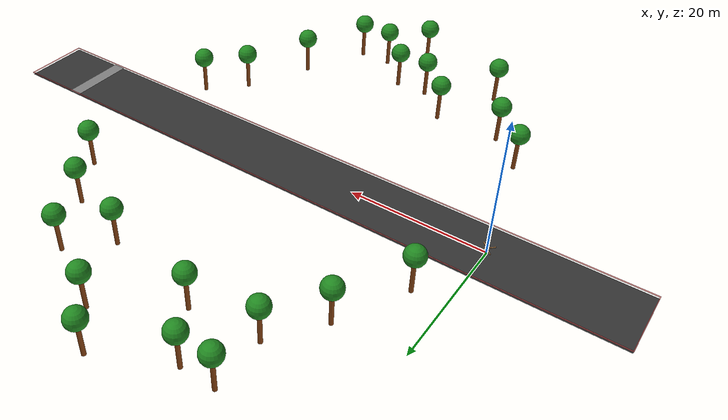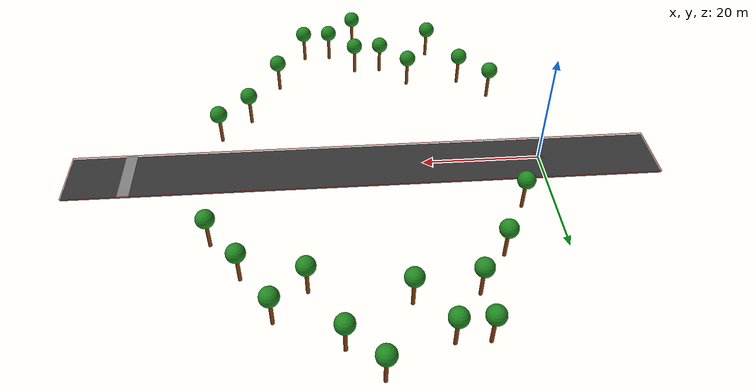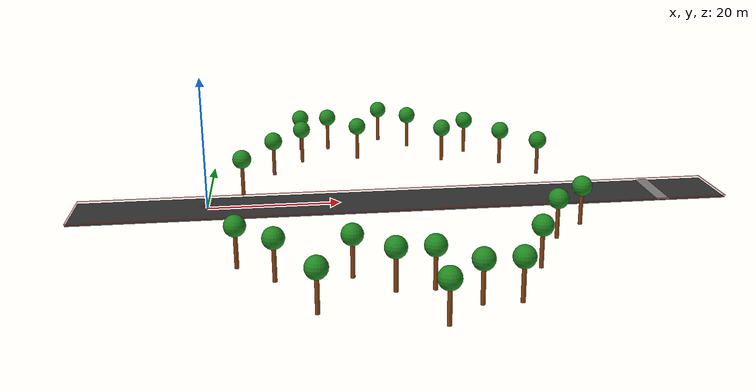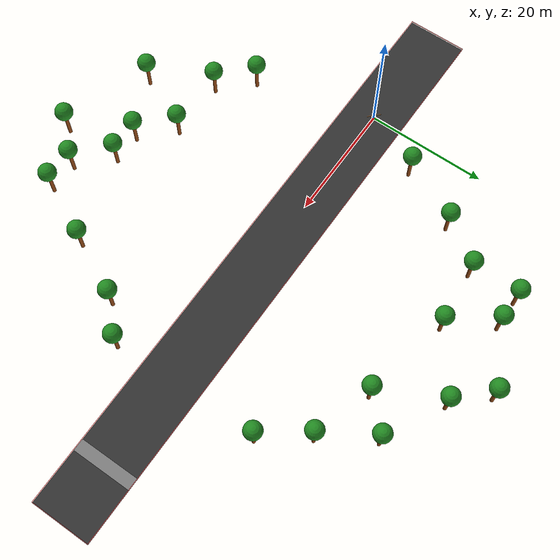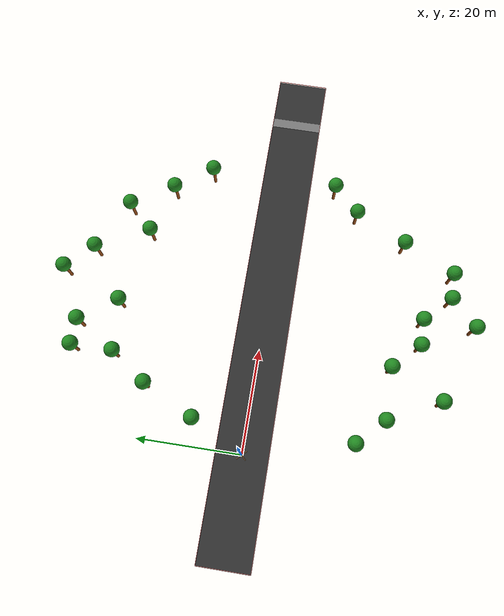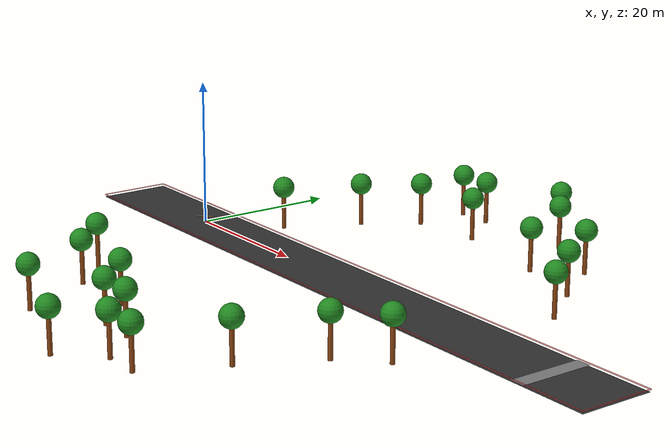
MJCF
<mujoco model="sprint_quadruped">
  <option timestep="0.004" iterations="1" ls_iterations="5" solver="Newton">
    <flag eulerdamp="disable"/>
  </option>

  <statistic center="0 0 0.1" extent="10.0" meansize="0.04"/>

  <visual>
    <rgba force="1 0 0 1" haze = "0.71 0.71 0.71 0.51" fog="0.71 0.71 0.71 1"/>
    <global azimuth="140" elevation="-20" offwidth="1280" offheight="720"/>
  </visual>

  <asset>
    <texture type="skybox" builtin="gradient" rgb1="0.71 0.71 0.71" rgb2="0.71 0.71 0.71" width="800" height="800"/>
    <texture name="grass" type="2d" builtin="checker" width="512" height="512" rgb1="0.133 0.745 0.133" rgb2="0.486 0.988 0.0"/>
    <texture name="trunk" type="cube" builtin="flat" width="128" height="128" rgb1="0.545 0.271 0.075" rgb2="0.545 0.271 0.075"/>
    <texture name="foliage" type="cube" builtin="flat" width="128" height="128" rgb1="0.133 0.545 0.133" rgb2="0.133 0.545 0.133"/>
    <texture name="black_white_checkers" type="2d" builtin="checker" width="512" height="512" rgb1="0 0 0" rgb2="1 1 1"/>
    <texture name="orange_brown_checkers" type="2d" builtin="checker" width="512" height="512" rgb1="0.988 0.729 0.012" rgb2="0.918 0.714 0.463"/>

    <material name="body" rgba=".7 .5 .3 1" specular="0.9" shininess="0.8"/>
    <material name="grass" texture="grass" texrepeat="1 1" texuniform="true" reflectance="0.2"/>
    <material name="trunk" texture="trunk" texuniform="true"/>
    <material name="track" texture="orange_brown_checkers" texrepeat="1 1" texuniform="true" reflectance="0.2"/>
    <material name="foliage" texture="foliage" texuniform="true"/>
    <material name="finish_line" texture="black_white_checkers" texrepeat="2 10"/>
  </asset>

  <default>
    <geom conaffinity="0" condim="3" contype="0"/>
    <default class="quadruped">
      <geom type="capsule" material="body" density="5"/>
    </default>
    <joint armature="1" damping="1" limited="true"/>
  </default>

  <worldbody>
    <!-- Building out the track -->
    <geom name="track" type="plane" material="track" pos="30 0 0" size="50 5 0.125" rgba="0.2 0.2 0.2 1.0"/>
    <geom name="side_railing1" type="box" pos="30 5 0.2" size="50.05 0.05 0.06" rgba="0.9 0.3 0.3 0.61"/>
    <geom name="side_railing2" type="box" pos="30 -5 0.2" size="50.05 0.05 0.06" rgba="0.9 0.3 0.3 0.61"/>
    <geom name="back_railing" type="box" pos="-20 0 0.2" size="0.05 5.05 0.06" rgba="0.9 0.3 0.3 0.61"/>
    <geom name="front_railing" type="box" pos="80 0 0.2" size="0.05 5.05 0.06" rgba="0.9 0.3 0.3 0.61"/>
    <geom name="finish_line" type="box" pos="70 0 0.001" size="1 5 0.001" material="finish_line"/>

    <geom type="plane" name="grass_right" material="grass" pos="30 35 0.150" size="50 30 0.125" rgba="0.2 0.2 0.2 1.0"/>
    <geom type="plane" name="grass_left" material="grass" pos="30 -35 0.150" size="50 30 0.125" rgba="0.2 0.2 0.2 1.0"/>
    <geom type="plane" name="grass_front" material="grass" pos="111 0 0.150" size="31 65 0.125" rgba="0.2 0.2 0.2 1.0"/>
    <geom type="plane" name="grass_back" material="grass" pos="-51 0 0.150" size="31 65 0.125" rgba="0.2 0.2 0.2 1.0" />
    <geom type="plane" name="grass" material="grass" pos="0 0 -2.150" size="0 0 0.125" rgba="0.2 0.2 0.2 1.0"/>

    <light name="ambient_light" pos="0 0 5000" dir="0 0 -1" ambient="0.41 0.41 0.41" diffuse="0.3 0.3 0.3" specular="0.1 0.1 0.1" mode="fixed" castshadow="false"/>

    <!-- Quadruped -->
    <body name="quadruped_torso" childclass="quadruped" pos="0 0 0.75">
      <light name="tracking_light" pos="0 0 7" dir="0 0 -1" specular="0.8 0.8 0.8" mode="trackcom"/>
      <camera name="cam_default" mode="trackcom" pos="4.660 -4.778 1.745" xyaxes="0.708 0.707 0.000 -0.240 0.241 0.940"/>
      <site name="quadruped" size="0.01" pos="0 0 0"/>
      <geom name="quadruped_torso" pos="0 0 0" size="0.25" type="sphere"/>
      <joint name="quadruped_root" type="free" armature="0" damping="0" limited="false" margin="0.01" pos="0 0 0"/>

      <body name="quadruped_front_left_leg" pos="0 0 0">
        <geom name="quadruped_front_left_aux" fromto="0.0 0.0 0.0 0.2 0.2 0.0" size="0.08" type="capsule"/>
        <body name="quadruped_front_left_aux" pos="0.2 0.2 0">
          <joint name="quadruped_front_left_hip" axis="0 0 1" pos="0.0 0.0 0.0" range="-30 30" type="hinge"/>
          <geom name="quadruped_front_left_leg" fromto="0.0 0.0 0.0 0.2 0.2 0.0" size="0.08" type="capsule"/>
          <body name="quadruped_front_left_knee" pos="0.2 0.2 0">
            <joint name="quadruped_front_left_ankle" axis="-1 1 0" pos="0.0 0.0 0.0" range="30 70" type="hinge"/>
            <geom name="quadruped_front_left_ankle" fromto="0.0 0.0 0.0 0.4 0.4 0.0" size="0.08" type="capsule"/>
            <geom name="quadruped_front_left_foot" pos="0.4 0.4 0" size="0.08" type="sphere" mass="0"/>
          </body>
        </body>
      </body>

      <body name="quadruped_front_right_leg" pos="0 0 0">
        <geom name="quadruped_front_right_aux" fromto="0.0 0.0 0.0 -0.2 0.2 0.0" size="0.08" type="capsule"/>
        <body name="quadruped_front_right_aux" pos="-0.2 0.2 0">
          <joint name="quadruped_front_right_hip" axis="0 0 1" pos="0.0 0.0 0.0" range="-30 30" type="hinge"/>
          <geom name="quadruped_front_right_leg" fromto="0.0 0.0 0.0 -0.2 0.2 0.0" size="0.08" type="capsule"/>
          <body name="quadruped_front_right_knee" pos="-0.2 0.2 0">
            <joint name="quadruped_front_right_ankle" axis="1 1 0" pos="0.0 0.0 0.0" range="-70 -30" type="hinge"/>
            <geom name="quadruped_front_right_ankle" fromto="0.0 0.0 0.0 -0.4 0.4 0.0" size="0.08" type="capsule"/>
            <geom name="quadruped_front_right_foot" pos="-0.4 0.4 0" size="0.08" type="sphere" mass="0"/>
          </body>
        </body>
      </body>

      <body name="quadruped_back_left_leg" pos="0 0 0">
        <geom name="quadruped_back_left_aux" fromto="0.0 0.0 0.0 -0.2 -0.2 0.0" size="0.08" type="capsule"/>
        <body name="quadruped_back_left_aux" pos="-0.2 -0.2 0">
          <joint name="quadruped_back_left_hip" axis="0 0 1" pos="0.0 0.0 0.0" range="-30 30" type="hinge"/>
          <geom name="quadruped_back_left_leg" fromto="0.0 0.0 0.0 -0.2 -0.2 0.0" size="0.08" type="capsule"/>
          <body name="quadruped_back_left_knee" pos="-0.2 -0.2 0">
            <joint name="quadruped_back_left_ankle" axis="-1 1 0" pos="0.0 0.0 0.0" range="-70 -30" type="hinge"/>
            <geom name="quadruped_back_left_ankle" fromto="0.0 0.0 0.0 -0.4 -0.4 0.0" size="0.08" type="capsule"/>
            <geom name="quadruped_back_left_foot" pos="-0.4 -0.4 0" size="0.08" type="sphere" mass="0"/>
          </body>
        </body>
      </body>

      <body name="quadruped_back_right_leg" pos="0 0 0">
        <geom name="quadruped_back_right_aux" fromto="0.0 0.0 0.0 0.2 -0.2 0.0" size="0.08" type="capsule"/>
        <body name="quadruped_back_right_aux" pos="0.2 -0.2 0">
          <joint name="quadruped_back_right_hip" axis="0 0 1" pos="0.0 0.0 0.0" range="-30 30" type="hinge"/>
          <geom name="quadruped_back_right_leg" fromto="0.0 0.0 0.0 0.2 -0.2 0.0" size="0.08" type="capsule"/>
          <body name="quadruped_back_right_knee" pos="0.2 -0.2 0">
            <joint name="quadruped_back_right_ankle" axis="1 1 0" pos="0.0 0.0 0.0" range="30 70" type="hinge"/>
            <geom name="quadruped_back_right_ankle" fromto="0.0 0.0 0.0 0.4 -0.4 0.0" size="0.08" type="capsule"/>
            <geom name="quadruped_back_right_foot" pos="0.4 -0.4 0" size="0.08" type="sphere" mass="0"/>
          </body>
        </body>
      </body>
    </body>

    <body name="trees">
      <body name="tree1" pos="40 25 0">
        <geom size="0.3 3" pos="0 0 1.5" type="cylinder" material="trunk"/>
        <geom size="1.5" pos="0 0 4.5" material="foliage"/>
      </body>
      <body name="tree2" pos="25 28 0">
        <geom size="0.3 3" pos="0 0 1.5" type="cylinder" material="trunk"/>
        <geom size="1.5" pos="0 0 4.5" material="foliage"/>
      </body>
      <body name="tree3" pos="45 30 0">
        <geom size="0.3 3" pos="0 0 1.5" type="cylinder" material="trunk"/>
        <geom size="1.5" pos="0 0 4.5" material="foliage"/>
      </body>
      <body name="tree4" pos="20 -25 0">
        <geom size="0.3 3" pos="0 0 1.5" type="cylinder" material="trunk"/>
        <geom size="1.5" pos="0 0 4.5" material="foliage"/>
      </body>
      <body name="tree5" pos="30 -30 0">
        <geom size="0.3 3" pos="0 0 1.5" type="cylinder" material="trunk"/>
        <geom size="1.5" pos="0 0 4.5" material="foliage"/>
      </body>
      <body name="tree6" pos="50 22 0">
        <geom size="0.3 3" pos="0 0 1.5" type="cylinder" material="trunk"/>
        <geom size="1.5" pos="0 0 4.5" material="foliage"/>
      </body>
      <body name="tree7" pos="15 27 0">
        <geom size="0.3 3" pos="0 0 1.5" type="cylinder" material="trunk"/>
        <geom size="1.5" pos="0 0 4.5" material="foliage"/>
      </body>
      <body name="tree8" pos="35 35 0">
        <geom size="0.3 3" pos="0 0 1.5" type="cylinder" material="trunk"/>
        <geom size="1.5" pos="0 0 4.5" material="foliage"/>
      </body>
      <body name="tree9" pos="10 20 0">
        <geom size="0.3 3" pos="0 0 1.5" type="cylinder" material="trunk"/>
        <geom size="1.5" pos="0 0 4.5" material="foliage"/>
      </body>
      <body name="tree10" pos="55 15 0">
        <geom size="0.3 3" pos="0 0 1.5" type="cylinder" material="trunk"/>
        <geom size="1.5" pos="0 0 4.5" material="foliage"/>
      </body>
      <body name="tree11" pos="5 -20 0">
        <geom size="0.3 3" pos="0 0 1.5" type="cylinder" material="trunk"/>
        <geom size="1.5" pos="0 0 4.5" material="foliage"/>
      </body>
      <body name="tree12" pos="45 -25 0">
        <geom size="0.3 3" pos="0 0 1.5" type="cylinder" material="trunk"/>
        <geom size="1.5" pos="0 0 4.5" material="foliage"/>
      </body>
      <body name="tree13" pos="25 -30 0">
        <geom size="0.3 3" pos="0 0 1.5" type="cylinder" material="trunk"/>
        <geom size="1.5" pos="0 0 4.5" material="foliage"/>
      </body>
      <body name="tree14" pos="40 -35 0">
        <geom size="0.3 3" pos="0 0 1.5" type="cylinder" material="trunk"/>
        <geom size="1.5" pos="0 0 4.5" material="foliage"/>
      </body>
      <body name="tree15" pos="30 40 0">
        <geom size="0.3 3" pos="0 0 1.5" type="cylinder" material="trunk"/>
        <geom size="1.5" pos="0 0 4.5" material="foliage"/>
      </body>
      <body name="tree16" pos="15 35 0">
        <geom size="0.3 3" pos="0 0 1.5" type="cylinder" material="trunk"/>
        <geom size="1.5" pos="0 0 4.5" material="foliage"/>
      </body>
      <body name="tree17" pos="50 -15 0">
        <geom size="0.3 3" pos="0 0 1.5" type="cylinder" material="trunk"/>
        <geom size="1.5" pos="0 0 4.5" material="foliage"/>
      </body>
      <body name="tree18" pos="10 -25 0">
        <geom size="0.3 3" pos="0 0 1.5" type="cylinder" material="trunk"/>
        <geom size="1.5" pos="0 0 4.5" material="foliage"/>
      </body>
      <body name="tree19" pos="55 -10 0">
        <geom size="0.3 3" pos="0 0 1.5" type="cylinder" material="trunk"/>
        <geom size="1.5" pos="0 0 4.5" material="foliage"/>
      </body>
      <body name="tree20" pos="5 10 0">
        <geom size="0.3 3" pos="0 0 1.5" type="cylinder" material="trunk"/>
        <geom size="1.5" pos="0 0 4.5" material="foliage"/>
      </body>
      <body name="tree21" pos="45 30 0">
        <geom size="0.3 3" pos="0 0 1.5" type="cylinder" material="trunk"/>
        <geom size="1.5" pos="0 0 4.5" material="foliage"/>
      </body>
      <body name="tree22" pos="20 35 0">
        <geom size="0.3 3" pos="0 0 1.5" type="cylinder" material="trunk"/>
        <geom size="1.5" pos="0 0 4.5" material="foliage"/>
      </body>
      <body name="tree23" pos="35 -35 0">
        <geom size="0.3 3" pos="0 0 1.5" type="cylinder" material="trunk"/>
        <geom size="1.5" pos="0 0 4.5" material="foliage"/>
      </body>
      <body name="tree24" pos="30 -40 0">
        <geom size="0.3 3" pos="0 0 1.5" type="cylinder" material="trunk"/>
        <geom size="1.5" pos="0 0 4.5" material="foliage"/>
      </body>
      <body name="tree25" pos="15 -35 0">
        <geom size="0.3 3" pos="0 0 1.5" type="cylinder" material="trunk"/>
        <geom size="1.5" pos="0 0 4.5" material="foliage"/>
      </body>
    </body>
  </worldbody>

    <contact>
      <!-- Floor contacts -->
      <pair geom1="quadruped_front_left_foot" geom2="track" friction="1 1 0.5 0.5 0.5"/>
      <pair geom1="quadruped_front_right_foot" geom2="track" friction="1 1 0.5 0.5 0.5"/>
      <pair geom1="quadruped_back_left_foot" geom2="track" friction="1 1 0.5 0.5 0.5"/>
      <pair geom1="quadruped_back_right_foot" geom2="track" friction="1 1 0.5 0.5 0.5"/>
    </contact>

    <!-- Quadruped has 8 Actuators -->
    <actuator>
      <motor ctrllimited="true" ctrlrange="-1.0 1.0" joint="quadruped_front_left_hip" gear="150"/>
      <motor ctrllimited="true" ctrlrange="-1.0 1.0" joint="quadruped_front_left_ankle" gear="150"/>
      <motor ctrllimited="true" ctrlrange="-1.0 1.0" joint="quadruped_front_right_hip" gear="150"/>
      <motor ctrllimited="true" ctrlrange="-1.0 1.0" joint="quadruped_front_right_ankle" gear="150"/>
      <motor ctrllimited="true" ctrlrange="-1.0 1.0" joint="quadruped_back_left_hip" gear="150"/>
      <motor ctrllimited="true" ctrlrange="-1.0 1.0" joint="quadruped_back_left_ankle" gear="150"/>
      <motor ctrllimited="true" ctrlrange="-1.0 1.0" joint="quadruped_back_right_hip" gear="150"/>
      <motor ctrllimited="true" ctrlrange="-1.0 1.0" joint="quadruped_back_right_ankle" gear="150"/>
    </actuator>

    <keyframe>
    <key name="init" qpos="0 0.0 0.55 1.0 0.0 0.0 0.0 0.0 1.0 0.0 -1.0 0.0 -1.0 0.0 1.0"/>
    </keyframe>
</mujoco>
